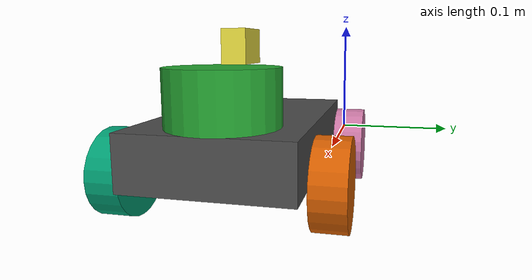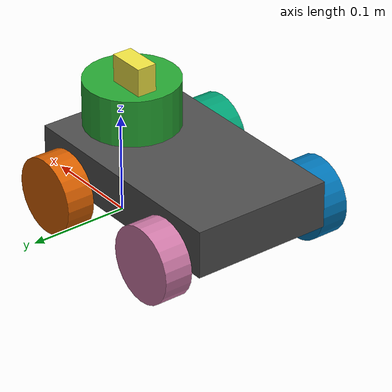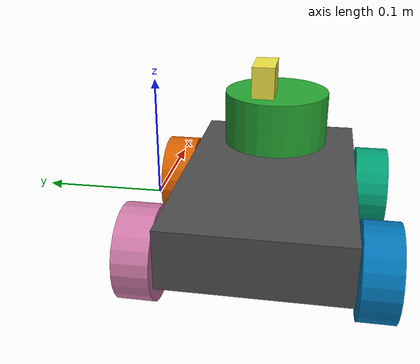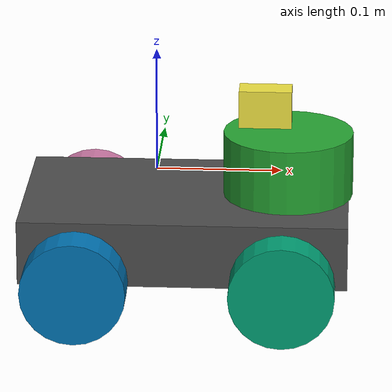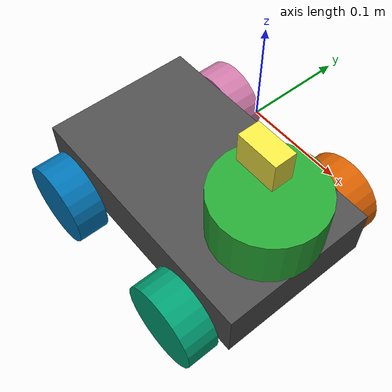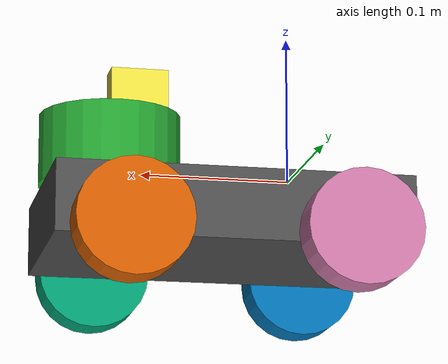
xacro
<?xml version="1.0" ?>
<robot name="bfl_7" xmlns:xacro="http://ros.org/wiki/xacro">

  <xacro:include filename="$(find dharmendra_model)/gazebo/bfl_7/bfl_7.gazebo"/>

  <link name= "0base_footprint" />

  <joint name="base_joint" type="fixed">
    <parent link="0base_footprint"/>
    <child link="base_link"/>
    <origin xyz="0.04061 -0.0922  -0.0155" rpy="0 0 0"/>
  </joint>

  <joint name="camera_joint" type="fixed">
    <parent link="base_link"/>
    <child link="camera_link"/>
    <origin xyz="0.04839 0.01119 0.09683" rpy="0      0     0"/>
    <axis xyz="1 0 0"/>
    <limit lower="0" upper="0" effort="0" velocity="0"/>
  </joint>
  <joint name="back_left_joint" type="revolute">
    <parent link="base_link"/>
    <child link="back_left_wheel"/>
    <origin xyz="0.06435 -0.09418 -0.015" rpy="1.5708 0     0"/>
    <axis xyz="0 0 1"/>
    <limit lower="-1.79769e+308" upper="1.79769e+308" effort="-1.0" velocity="-1.0"/>
  </joint>
  <joint name="back_right_joint" type="revolute">
    <parent link="base_link"/>
    <child link="back_right_wheel"/>
    <origin xyz="0.06435  0.09414 -0.015" rpy="1.5708 0     0"/>
    <axis xyz="0 0 1"/>
    <limit lower="-1.79769e+308" upper="1.79769e+308" effort="-1.0" velocity="-1.0"/>
  </joint>
  <joint name="front_right_joint" type="revolute">
    <parent link="base_link"/>
    <child link="front_right_wheel"/>
    <origin xyz="-0.09187  0.09414 -0.015" rpy="1.5708 0     0"/>
    <axis xyz="0 0 1"/>
    <limit lower="-1.79769e+308" upper="1.79769e+308" effort="-1.0" velocity="-1.0"/>
  </joint>
  <joint name="front_left_joint" type="revolute">
    <parent link="base_link"/>
    <child link="front_left_wheel"/>
    <origin xyz="-0.09187 -0.09418 -0.015" rpy="1.5708 0     0"/>
    <axis xyz="0 0 1"/>
    <limit lower="-1.79769e+308" upper="1.79769e+308" effort="-1.0" velocity="-1.0"/>
  </joint>
  <joint name="lidar_joint" type="fixed">
    <parent link="base_link"/>
    <child link="lidar_link"/>
    <origin xyz="0.06659 0.00097 0.055" rpy="0 0 0"/>
    <axis xyz="0 0 0"/>
    <limit lower="0" upper="0" effort="0" velocity="0"/>
  </joint>
  <link name="base_link">
    <inertial>
      <mass value="1"/>
      <origin xyz="0 0 0" rpy="0 0 0"/>
      <inertia ixx="0.166667" ixy="0" ixz="0" iyy="0.166667" iyz="0" izz="0.166667"/>
    </inertial>
    <collision>
      <origin xyz="-0.01153 -0.0009   0.005" rpy="0 0 0"/>
      <geometry>
        <box size="0.25 0.15 0.05"/>
      </geometry>
    </collision>
    <visual>
      <origin xyz="-0.01153 -0.0009   0.005" rpy="0 0 0"/>
      <geometry>
        <box size="0.25 0.15 0.05"/>
      </geometry>
    </visual>
  </link>
  <link name="back_left_wheel">
    <inertial>
      <mass value="1"/>
      <origin xyz="0 0 0" rpy="0 0 0"/>
      <inertia ixx="0.000475" ixy="0" ixz="0" iyy="0.000475" iyz="0" izz="0.0008"/>
    </inertial>
    <collision>
      <origin xyz="0 0 0" rpy="0 0 0"/>
      <geometry>
        <cylinder radius="0.04" length="0.03"/>
      </geometry>
    </collision>
    <visual>
      <origin xyz="0 0 0" rpy="0 0 0"/>
      <geometry>
        <cylinder radius="0.04" length="0.03"/>
      </geometry>
    </visual>
  </link>
  <link name="camera_link">
    <inertial>
      <mass value="2.50756e-05"/>
      <origin xyz="0 0 0" rpy="0 0 0"/>
      <inertia ixx="2.73272e-09" ixy="0" ixz="0" iyy="5.24423e-09" iyz="0" izz="4.36309e-09"/>
    </inertial>
    <collision>
      <origin xyz="0 0 0" rpy="0 0 0"/>
      <geometry>
        <box size="0.040558 0.021049 0.029406"/>
      </geometry>
    </collision>
    <visual>
      <origin xyz="0 0 0" rpy="0 0 0"/>
      <geometry>
        <box size="0.040558 0.021049 0.029406"/>
      </geometry>
    </visual>
  </link>
  <link name="front_left_wheel">
    <inertial>
      <mass value="1"/>
      <origin xyz="0 0 0" rpy="0 0 0"/>
      <inertia ixx="0.145833" ixy="0" ixz="0" iyy="0.145833" iyz="0" izz="0.125"/>
    </inertial>
    <collision>
      <origin xyz="0 0 0" rpy="0 0 0"/>
      <geometry>
        <cylinder radius="0.04" length="0.03"/>
      </geometry>
    </collision>
    <visual>
      <origin xyz="0 0 0" rpy="0 0 0"/>
      <geometry>
        <cylinder radius="0.04" length="0.03"/>
      </geometry>
    </visual>
  </link>
  <link name="back_right_wheel">
    <inertial>
      <mass value="1"/>
      <origin xyz="0 0 0" rpy="0 0 0"/>
      <inertia ixx="0.145833" ixy="0" ixz="0" iyy="0.145833" iyz="0" izz="0.125"/>
    </inertial>
    <collision>
      <origin xyz="0 0 0" rpy="0 0 0"/>
      <geometry>
        <cylinder radius="0.04" length="0.03"/>
      </geometry>
    </collision>
    <visual>
      <origin xyz="0 0 0" rpy="0 0 0"/>
      <geometry>
        <cylinder radius="0.04" length="0.03"/>
      </geometry>
    </visual>
  </link>
  <link name="front_right_wheel">
    <inertial>
      <mass value="1"/>
      <origin xyz="0 0 0" rpy="0 0 0"/>
      <inertia ixx="0.145833" ixy="0" ixz="0" iyy="0.145833" iyz="0" izz="0.125"/>
    </inertial>
    <collision>
      <origin xyz="0 0 0" rpy="0 0 0"/>
      <geometry>
        <cylinder radius="0.04" length="0.03"/>
      </geometry>
    </collision>
    <visual>
      <origin xyz="0 0 0" rpy="0 0 0"/>
      <geometry>
        <cylinder radius="0.04" length="0.03"/>
      </geometry>
    </visual>
  </link>
  <link name="lidar_link">
    <inertial>
      <mass value="1"/>
      <origin xyz="0 0 0" rpy="0 0 0"/>
      <inertia ixx="0.145833" ixy="0" ixz="0" iyy="0.145833" iyz="0" izz="0.125"/>
    </inertial>
    <collision>
      <origin xyz="0 0 0" rpy="0 0 0"/>
      <geometry>
        <cylinder radius="0.05" length="0.05"/>
      </geometry>
    </collision>
    <visual>
      <origin xyz="0 0 0" rpy="0 0 0"/>
      <geometry>
        <cylinder radius="0.05" length="0.05"/>
      </geometry>
    </visual>
  </link>
</robot>
